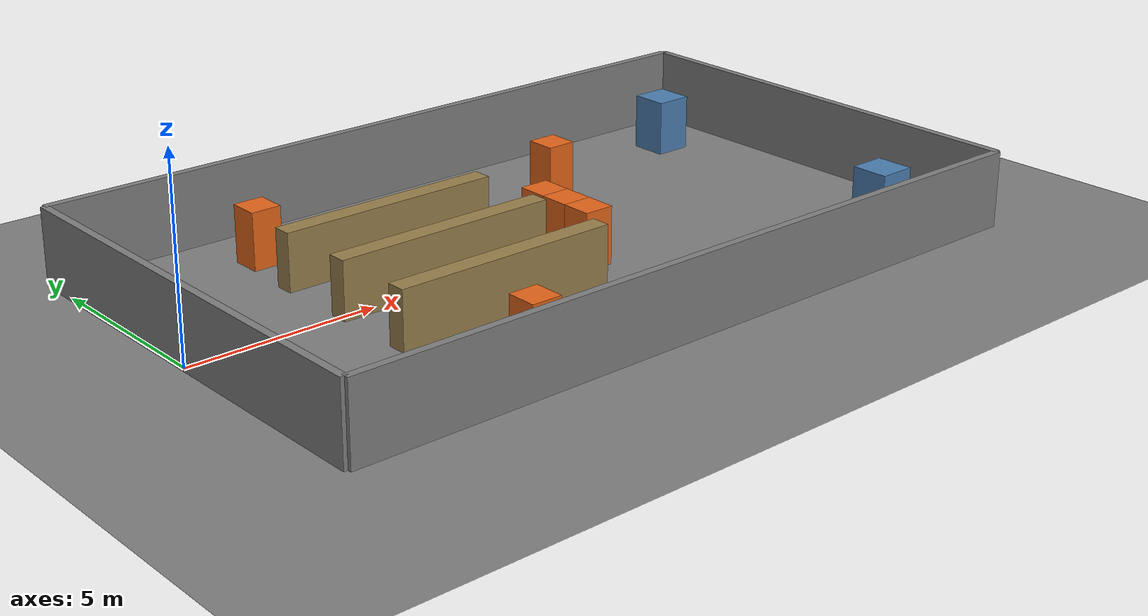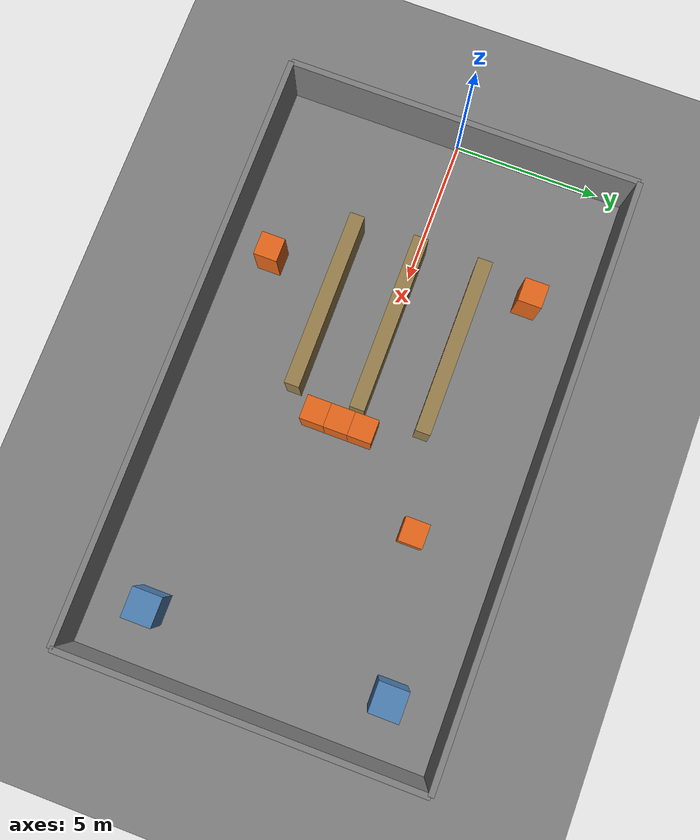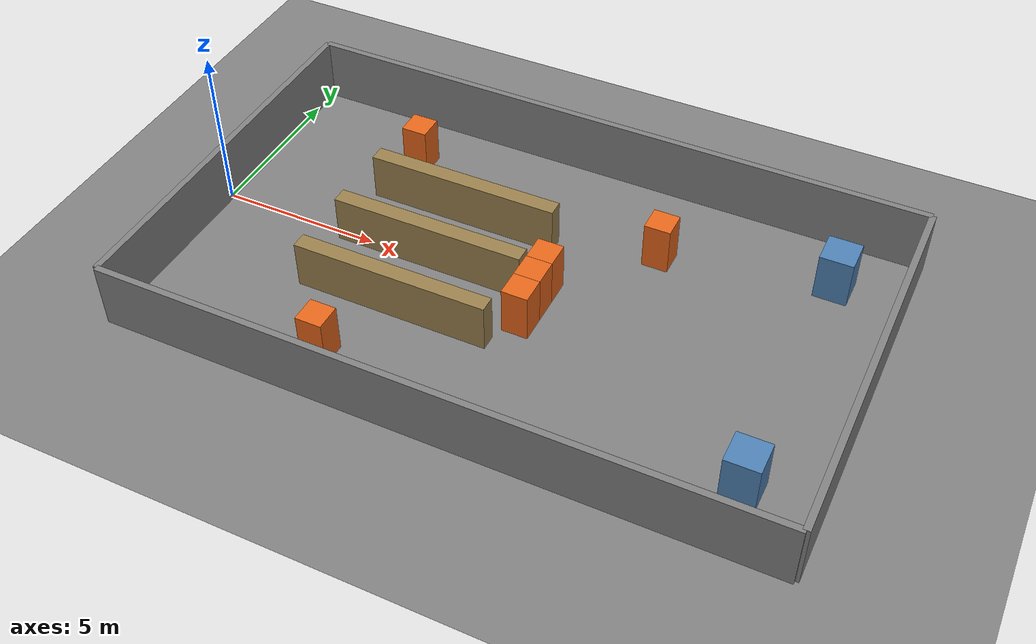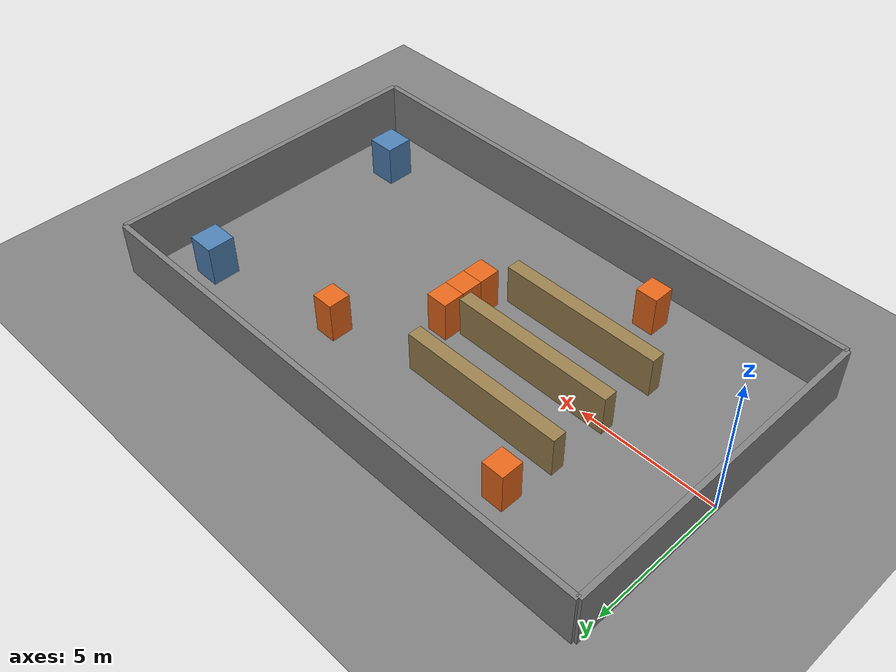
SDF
<?xml version="1.0"?>
<!-- 3C 车间仿真 world — 料架阵窄通道穿行 + 机台对接 + 送料往返。
     车间 20×12m（x 0-20, y -6~6）；3 排料架（y=2.2/0/-2.2，排间 1.2m 通道）；
     2 机台（东墙 (18,±4)，1m×1m）；AMR spawn (1,0)，送料到机台旁 goal。
     先简化：3 排长料架测通道穿行；分列料架阵（x+y 通道）后续。 -->
<sdf version="1.9">
  <world name="factory_3c">
    <gravity>0 0 -9.8</gravity>
    <scene><ambient>0.4 0.4 0.4</ambient><background>0.7 0.7 0.7</background><shadows>true</shadows></scene>
    <physics type="dartsim"><real_time_update_rate>1000</real_time_update_rate><max_step_size>0.001</max_step_size></physics>
    <plugin filename="gz-sim-physics-system" name="gz::sim::systems::Physics"><engine>gz-physics-dartsim-plugin</engine></plugin>
    <plugin filename="gz-sim-sensors-system" name="gz::sim::systems::Sensors"><render_engine>ogre2</render_engine></plugin>
    <plugin filename="gz-sim-user-commands-system" name="gz::sim::systems::UserCommands"/>

    <!-- 地面 20×12 -->
    <model name="ground"><static>true</static>
      <link name="l"><collision name="c"><geometry><plane><normal>0 0 1</normal><size>20 12</size></plane></geometry></collision>
        <visual name="v"><geometry><plane><normal>0 0 1</normal><size>20 12</size></plane></geometry><material><ambient>0.3 0.3 0.3</ambient><diffuse>0.5 0.5 0.5</diffuse></material></visual></link></model>

    <!-- 墙 4 面（车间边界）-->
    <model name="wall_west"><static>true</static><pose>0 0 1 0 0 0</pose><link name="l"><collision name="c"><geometry><box><size>0.2 12 2</size></box></geometry></collision><visual name="v"><geometry><box><size>0.2 12 2</size></box></geometry><material><ambient>0.5 0.5 0.5</ambient></material></visual></link></model>
    <model name="wall_east"><static>true</static><pose>20 0 1 0 0 0</pose><link name="l"><collision name="c"><geometry><box><size>0.2 12 2</size></box></geometry></collision><visual name="v"><geometry><box><size>0.2 12 2</size></box></geometry><material><ambient>0.5 0.5 0.5</ambient></material></visual></link></model>
    <model name="wall_south"><static>true</static><pose>10 -6 1 0 0 0</pose><link name="l"><collision name="c"><geometry><box><size>20 0.2 2</size></box></geometry></collision><visual name="v"><geometry><box><size>20 0.2 2</size></box></geometry><material><ambient>0.5 0.5 0.5</ambient></material></visual></link></model>
    <model name="wall_north"><static>true</static><pose>10 6 1 0 0 0</pose><link name="l"><collision name="c"><geometry><box><size>20 0.2 2</size></box></geometry></collision><visual name="v"><geometry><box><size>20 0.2 2</size></box></geometry><material><ambient>0.5 0.5 0.5</ambient></material></visual></link></model>

    <!-- 料架阵 3 排（每排 6m×0.5m，x 中心 7 即 x=4-10；y=2.2/0/-2.2，排间 1.2m 通道）-->
    <model name="rack_row1"><static>true</static><pose>7 2.2 0.75 0 0 0</pose><link name="l"><collision name="c"><geometry><box><size>6 0.5 1.5</size></box></geometry></collision><visual name="v"><geometry><box><size>6 0.5 1.5</size></box></geometry><material><ambient>0.6 0.5 0.3</ambient><diffuse>0.6 0.5 0.3</diffuse></material></visual></link></model>
    <model name="rack_row2"><static>true</static><pose>7 0 0.75 0 0 0</pose><link name="l"><collision name="c"><geometry><box><size>6 0.5 1.5</size></box></geometry></collision><visual name="v"><geometry><box><size>6 0.5 1.5</size></box></geometry><material><ambient>0.6 0.5 0.3</ambient><diffuse>0.6 0.5 0.3</diffuse></material></visual></link></model>
    <model name="rack_row3"><static>true</static><pose>7 -2.2 0.75 0 0 0</pose><link name="l"><collision name="c"><geometry><box><size>6 0.5 1.5</size></box></geometry></collision><visual name="v"><geometry><box><size>6 0.5 1.5</size></box></geometry><material><ambient>0.6 0.5 0.3</ambient><diffuse>0.6 0.5 0.3</diffuse></material></visual></link></model>

    <!-- 机台 2（1m×1m，东墙旁，对接 goal 在机台西侧）-->
    <model name="machine1"><static>true</static><pose>18 4 0.75 0 0 0</pose><link name="l"><collision name="c"><geometry><box><size>1 1 1.5</size></box></geometry></collision><visual name="v"><geometry><box><size>1 1 1.5</size></box></geometry><material><ambient>0.2 0.4 0.6</ambient><diffuse>0.3 0.5 0.7</diffuse></material></visual></link></model>
    <model name="machine2"><static>true</static><pose>18 -4 0.75 0 0 0</pose><link name="l"><collision name="c"><geometry><box><size>1 1 1.5</size></box></geometry></collision><visual name="v"><geometry><box><size>1 1 1.5</size></box></geometry><material><ambient>0.2 0.4 0.6</ambient><diffuse>0.3 0.5 0.7</diffuse></material></visual></link></model>

    <light type="directional" name="sun"><cast_shadows>true</cast_shadows><pose>0 0 10 0 0 0</pose><diffuse>1 1 1 1</diffuse><specular>0.5 0.5 0.5 1</specular><direction>-0.5 0.1 -0.9</direction></light>

  <model name="crate1"><static>true</static><pose>10.5 -1.2 0.75 0 0 0</pose>
    <link name="l"><collision name="c"><geometry><box><size>0.8 0.8 1.5</size></box></geometry></collision>
    <visual name="v"><geometry><box><size>0.8 0.8 1.5</size></box></geometry>
    <material><ambient>0.9 0.4 0.1</ambient><diffuse>0.9 0.4 0.1</diffuse></material></visual></link>
  </model>
  <model name="crate2"><static>true</static><pose>10.5 -0.4 0.75 0 0 0</pose>
    <link name="l"><collision name="c"><geometry><box><size>0.8 0.8 1.5</size></box></geometry></collision>
    <visual name="v"><geometry><box><size>0.8 0.8 1.5</size></box></geometry>
    <material><ambient>0.9 0.4 0.1</ambient><diffuse>0.9 0.4 0.1</diffuse></material></visual></link>
  </model>
  <model name="crate3"><static>true</static><pose>10.5 0.4 0.75 0 0 0</pose>
    <link name="l"><collision name="c"><geometry><box><size>0.8 0.8 1.5</size></box></geometry></collision>
    <visual name="v"><geometry><box><size>0.8 0.8 1.5</size></box></geometry>
    <material><ambient>0.9 0.4 0.1</ambient><diffuse>0.9 0.4 0.1</diffuse></material></visual></link>
  </model>
  <model name="crate4"><static>true</static><pose>13.0 3.0 0.75 0 0 0</pose>
    <link name="l"><collision name="c"><geometry><box><size>0.8 0.8 1.5</size></box></geometry></collision>
    <visual name="v"><geometry><box><size>0.8 0.8 1.5</size></box></geometry>
    <material><ambient>0.9 0.4 0.1</ambient><diffuse>0.9 0.4 0.1</diffuse></material></visual></link>
  </model>
  <model name="crate5"><static>true</static><pose>6.0 -4.5 0.75 0 0 0</pose>
    <link name="l"><collision name="c"><geometry><box><size>0.8 0.8 1.5</size></box></geometry></collision>
    <visual name="v"><geometry><box><size>0.8 0.8 1.5</size></box></geometry>
    <material><ambient>0.9 0.4 0.1</ambient><diffuse>0.9 0.4 0.1</diffuse></material></visual></link>
  </model>
  <model name="crate6"><static>true</static><pose>4.5 4.0 0.75 0 0 0</pose>
    <link name="l"><collision name="c"><geometry><box><size>0.8 0.8 1.5</size></box></geometry></collision>
    <visual name="v"><geometry><box><size>0.8 0.8 1.5</size></box></geometry>
    <material><ambient>0.9 0.4 0.1</ambient><diffuse>0.9 0.4 0.1</diffuse></material></visual></link>
  </model>
</world>
</sdf>
